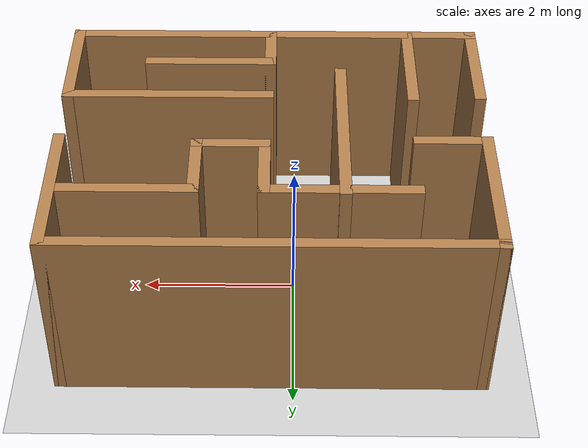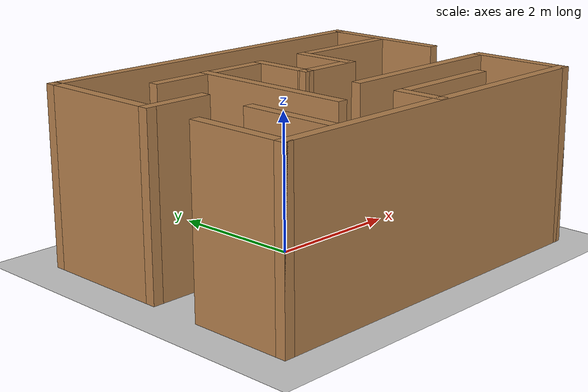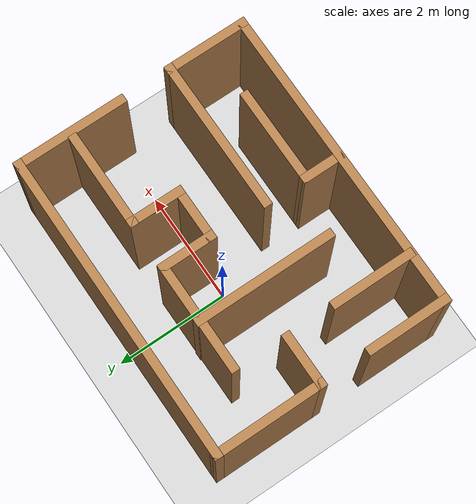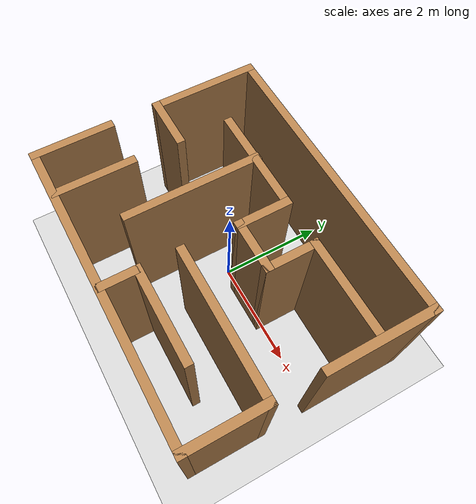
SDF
<sdf version="1.7">
 <world name="default">
  <light name="sun" type="directional">
   <pose>0 0 10 0 -0 0</pose>
   <diffuse>0.8 0.8 0.8 1</diffuse>
   <specular>0.2 0.2 0.2 1</specular>
   <attenuation>
    <range>1000</range>
    <constant>0.9</constant>
    <linear>0.01</linear>
    <quadratic>0.001</quadratic>
   </attenuation>
   <direction>-0.5 0.1 -0.9</direction>
   <spot><inner_angle>0</inner_angle><outer_angle>0</outer_angle><falloff>0</falloff></spot>
  </light>
  <model name="ground_plane">
   <static>1</static>
   <link name="link">
    <collision name="collision">
     <geometry><plane><normal>0 0 1</normal><size>100 100</size></plane></geometry>
     <surface>
      <contact><collide_bitmask>65535</collide_bitmask></contact>
      <friction><ode><mu>100</mu><mu2>50</mu2></ode></friction>
     </surface>
    </collision>
    <visual name="visual">
     <cast_shadows>0</cast_shadows>
     <geometry><plane><normal>0 0 1</normal><size>100 100</size></plane></geometry>
     <material>
      <script><uri>file://media/materials/scripts/gazebo.material</uri><name>Gazebo/Grey</name></script>
     </material>
    </visual>
   </link>
  </model>
  <gravity>0 0 -9.8</gravity>
  <magnetic_field>6e-06 2.3e-05 -4.2e-05</magnetic_field>
  <atmosphere type="adiabatic"/>
  <physics type="ode">
   <max_step_size>0.001</max_step_size>
   <real_time_factor>1</real_time_factor>
   <real_time_update_rate>1000</real_time_update_rate>
  </physics>
  <scene><ambient>0.4 0.4 0.4 1</ambient><background>0.7 0.7 0.7 1</background><shadows>1</shadows></scene>
  <spherical_coordinates>
   <surface_model>EARTH_WGS84</surface_model>
   <latitude_deg>0</latitude_deg>
   <longitude_deg>0</longitude_deg>
   <elevation>0</elevation>
   <heading_deg>0</heading_deg>
  </spherical_coordinates>
  <model name="my_world">
   <pose>0.274272 -0.330277 0 0 -0 0</pose>
   <link name="Wall_0">
    <collision name="Wall_0_Collision">
     <geometry><box><size>1 0.15 2.5</size></box></geometry>
     <pose>0 0 1.25 0 -0 0</pose>
    </collision>
    <visual name="Wall_0_Visual">
     <pose>0 0 1.25 0 -0 0</pose>
     <geometry><box><size>1 0.15 2.5</size></box></geometry>
     <material>
      <script><uri>file://media/materials/scripts/gazebo.material</uri><name>Gazebo/Wood</name></script>
      <ambient>1 1 1 1</ambient>
     </material>
     <meta><layer>0</layer></meta>
    </visual>
    <pose>-2.24916 0.206262 0 0 -0 3.14159</pose>
   </link>
   <link name="Wall_1">
    <collision name="Wall_1_Collision">
     <geometry><box><size>2 0.15 2.5</size></box></geometry>
     <pose>0 0 1.25 0 -0 0</pose>
    </collision>
    <visual name="Wall_1_Visual">
     <pose>0 0 1.25 0 -0 0</pose>
     <geometry><box><size>2 0.15 2.5</size></box></geometry>
     <material>
      <script><uri>file://media/materials/scripts/gazebo.material</uri><name>Gazebo/Wood</name></script>
      <ambient>1 1 1 1</ambient>
     </material>
     <meta><layer>0</layer></meta>
    </visual>
    <pose>-2.67415 1.13126 0 0 -0 1.5708</pose>
   </link>
   <link name="Wall_10">
    <collision name="Wall_10_Collision">
     <geometry><box><size>1.75 0.15 2.5</size></box></geometry>
     <pose>0 0 1.25 0 -0 0</pose>
    </collision>
    <visual name="Wall_10_Visual">
     <pose>0 0 1.25 0 -0 0</pose>
     <geometry><box><size>1.75 0.15 2.5</size></box></geometry>
     <material>
      <script><uri>file://media/materials/scripts/gazebo.material</uri><name>Gazebo/Wood</name></script>
      <ambient>1 1 1 1</ambient>
     </material>
     <meta><layer>0</layer></meta>
    </visual>
    <pose>1.75189 1.134 0 0 -0 0</pose>
   </link>
   <link name="Wall_12">
    <collision name="Wall_12_Collision">
     <geometry><box><size>1.5 0.15 2.5</size></box></geometry>
     <pose>0 0 1.25 0 -0 0</pose>
    </collision>
    <visual name="Wall_12_Visual">
     <pose>0 0 1.25 0 -0 0</pose>
     <geometry><box><size>1.5 0.15 2.5</size></box></geometry>
     <material>
      <script><uri>file://media/materials/scripts/gazebo.material</uri><name>Gazebo/Wood</name></script>
      <ambient>1 1 1 1</ambient>
     </material>
     <meta><layer>0</layer></meta>
    </visual>
    <pose>-2.67584 -1.38126 0 0 -0 -1.5708</pose>
   </link>
   <link name="Wall_13">
    <collision name="Wall_13_Collision">
     <geometry><box><size>5.5 0.15 2.5</size></box></geometry>
     <pose>0 0 1.25 0 -0 0</pose>
    </collision>
    <visual name="Wall_13_Visual">
     <pose>0 0 1.25 0 -0 0</pose>
     <geometry><box><size>5.5 0.15 2.5</size></box></geometry>
     <material>
      <script><uri>file://media/materials/scripts/gazebo.material</uri><name>Gazebo/Wood</name></script>
      <ambient>1 1 1 1</ambient>
     </material>
     <meta><layer>0</layer></meta>
    </visual>
    <pose>-0.000845 -2.05626 0 0 -0 0</pose>
   </link>
   <link name="Wall_14">
    <collision name="Wall_14_Collision">
     <geometry><box><size>1.5 0.15 2.5</size></box></geometry>
     <pose>0 0 1.25 0 -0 0</pose>
    </collision>
    <visual name="Wall_14_Visual">
     <pose>0 0 1.25 0 -0 0</pose>
     <geometry><box><size>1.5 0.15 2.5</size></box></geometry>
     <material>
      <script><uri>file://media/materials/scripts/gazebo.material</uri><name>Gazebo/Wood</name></script>
      <ambient>1 1 1 1</ambient>
     </material>
     <meta><layer>0</layer></meta>
    </visual>
    <pose>2.67415 -1.38126 0 0 -0 1.5708</pose>
   </link>
   <link name="Wall_15">
    <collision name="Wall_15_Collision">
     <geometry><box><size>2.75 0.15 2.5</size></box></geometry>
     <pose>0 0 1.25 0 -0 0</pose>
    </collision>
    <visual name="Wall_15_Visual">
     <pose>0 0 1.25 0 -0 0</pose>
     <geometry><box><size>2.75 0.15 2.5</size></box></geometry>
     <material>
      <script><uri>file://media/materials/scripts/gazebo.material</uri><name>Gazebo/Wood</name></script>
      <ambient>1 1 1 1</ambient>
     </material>
     <meta><layer>0</layer></meta>
    </visual>
    <pose>1.37416 -0.706262 0 0 -0 3.14159</pose>
   </link>
   <link name="Wall_17">
    <collision name="Wall_17_Collision">
     <geometry><box><size>0.75 0.15 2.5</size></box></geometry>
     <pose>0 0 1.25 0 -0 0</pose>
    </collision>
    <visual name="Wall_17_Visual">
     <pose>0 0 1.25 0 -0 0</pose>
     <geometry><box><size>0.75 0.15 2.5</size></box></geometry>
     <material>
      <script><uri>file://media/materials/scripts/gazebo.material</uri><name>Gazebo/Wood</name></script>
      <ambient>1 1 1 1</ambient>
     </material>
     <meta><layer>0</layer></meta>
    </visual>
    <pose>0.046521 -1.72942 0 0 -0 1.5708</pose>
   </link>
   <link name="Wall_18">
    <collision name="Wall_18_Collision">
     <geometry><box><size>1.75 0.15 2.5</size></box></geometry>
     <pose>0 0 1.25 0 -0 0</pose>
    </collision>
    <visual name="Wall_18_Visual">
     <pose>0 0 1.25 0 -0 0</pose>
     <geometry><box><size>1.75 0.15 2.5</size></box></geometry>
     <material>
      <script><uri>file://media/materials/scripts/gazebo.material</uri><name>Gazebo/Wood</name></script>
      <ambient>1 1 1 1</ambient>
     </material>
     <meta><layer>0</layer></meta>
    </visual>
    <pose>0.846521 -1.42942 0 0 -0 0</pose>
   </link>
   <link name="Wall_2">
    <collision name="Wall_2_Collision">
     <geometry><box><size>5.5 0.15 2.5</size></box></geometry>
     <pose>0 0 1.25 0 -0 0</pose>
    </collision>
    <visual name="Wall_2_Visual">
     <pose>0 0 1.25 0 -0 0</pose>
     <geometry><box><size>5.5 0.15 2.5</size></box></geometry>
     <material>
      <script><uri>file://media/materials/scripts/gazebo.material</uri><name>Gazebo/Wood</name></script>
      <ambient>1 1 1 1</ambient>
     </material>
     <meta><layer>0</layer></meta>
    </visual>
    <pose>0.000845 2.05626 0 0 -0 0</pose>
   </link>
   <link name="Wall_20">
    <collision name="Wall_20_Collision">
     <geometry><box><size>2.5 0.15 2.5</size></box></geometry>
     <pose>0 0 1.25 0 -0 0</pose>
    </collision>
    <visual name="Wall_20_Visual">
     <pose>0 0 1.25 0 -0 0</pose>
     <geometry><box><size>2.5 0.15 2.5</size></box></geometry>
     <material>
      <script><uri>file://media/materials/scripts/gazebo.material</uri><name>Gazebo/Wood</name></script>
      <ambient>1 1 1 1</ambient>
     </material>
     <meta><layer>0</layer></meta>
    </visual>
    <pose>-0.881213 -0.025795 0 0 -0 -1.5708</pose>
   </link>
   <link name="Wall_22">
    <collision name="Wall_22_Collision">
     <geometry><box><size>1.5 0.15 2.5</size></box></geometry>
     <pose>0 0 1.25 0 -0 0</pose>
    </collision>
    <visual name="Wall_22_Visual">
     <pose>0 0 1.25 0 -0 0</pose>
     <geometry><box><size>1.5 0.15 2.5</size></box></geometry>
     <material>
      <script><uri>file://media/materials/scripts/gazebo.material</uri><name>Gazebo/Wood</name></script>
      <ambient>1 1 1 1</ambient>
     </material>
     <meta><layer>0</layer></meta>
    </visual>
    <pose>-1.80895 -1.35085 0 0 -0 -1.5708</pose>
   </link>
   <link name="Wall_3">
    <collision name="Wall_3_Collision">
     <geometry><box><size>2 0.15 2.5</size></box></geometry>
     <pose>0 0 1.25 0 -0 0</pose>
    </collision>
    <visual name="Wall_3_Visual">
     <pose>0 0 1.25 0 -0 0</pose>
     <geometry><box><size>2 0.15 2.5</size></box></geometry>
     <material>
      <script><uri>file://media/materials/scripts/gazebo.material</uri><name>Gazebo/Wood</name></script>
      <ambient>1 1 1 1</ambient>
     </material>
     <meta><layer>0</layer></meta>
    </visual>
    <pose>2.67584 1.13126 0 0 -0 -1.5708</pose>
   </link>
   <link name="Wall_6">
    <collision name="Wall_6_Collision">
     <geometry><box><size>2 0.15 2.5</size></box></geometry>
     <pose>0 0 1.25 0 -0 0</pose>
    </collision>
    <visual name="Wall_6_Visual">
     <pose>0 0 1.25 0 -0 0</pose>
     <geometry><box><size>2 0.15 2.5</size></box></geometry>
     <material>
      <script><uri>file://media/materials/scripts/gazebo.material</uri><name>Gazebo/Wood</name></script>
      <ambient>1 1 1 1</ambient>
     </material>
     <meta><layer>0</layer></meta>
    </visual>
    <pose>-0.823111 1.134 0 0 -0 0</pose>
   </link>
   <link name="Wall_7">
    <collision name="Wall_7_Collision">
     <geometry><box><size>1 0.15 2.5</size></box></geometry>
     <pose>0 0 1.25 0 -0 0</pose>
    </collision>
    <visual name="Wall_7_Visual">
     <pose>0 0 1.25 0 -0 0</pose>
     <geometry><box><size>1 0.15 2.5</size></box></geometry>
     <material>
      <script><uri>file://media/materials/scripts/gazebo.material</uri><name>Gazebo/Wood</name></script>
      <ambient>1 1 1 1</ambient>
     </material>
     <meta><layer>0</layer></meta>
    </visual>
    <pose>0.101889 0.708996 0 0 -0 -1.5708</pose>
   </link>
   <link name="Wall_8">
    <collision name="Wall_8_Collision">
     <geometry><box><size>1 0.15 2.5</size></box></geometry>
     <pose>0 0 1.25 0 -0 0</pose>
    </collision>
    <visual name="Wall_8_Visual">
     <pose>0 0 1.25 0 -0 0</pose>
     <geometry><box><size>1 0.15 2.5</size></box></geometry>
     <material>
      <script><uri>file://media/materials/scripts/gazebo.material</uri><name>Gazebo/Wood</name></script>
      <ambient>1 1 1 1</ambient>
     </material>
     <meta><layer>0</layer></meta>
    </visual>
    <pose>0.526889 0.283996 0 0 -0 0</pose>
   </link>
   <link name="Wall_9">
    <collision name="Wall_9_Collision">
     <geometry><box><size>1 0.15 2.5</size></box></geometry>
     <pose>0 0 1.25 0 -0 0</pose>
    </collision>
    <visual name="Wall_9_Visual">
     <pose>0 0 1.25 0 -0 0</pose>
     <geometry><box><size>1 0.15 2.5</size></box></geometry>
     <material>
      <script><uri>file://media/materials/scripts/gazebo.material</uri><name>Gazebo/Wood</name></script>
      <ambient>1 1 1 1</ambient>
     </material>
     <meta><layer>0</layer></meta>
    </visual>
    <pose>0.951889 0.708996 0 0 -0 1.5708</pose>
   </link>
   <static>1</static>
  </model>
 </world>
</sdf>
